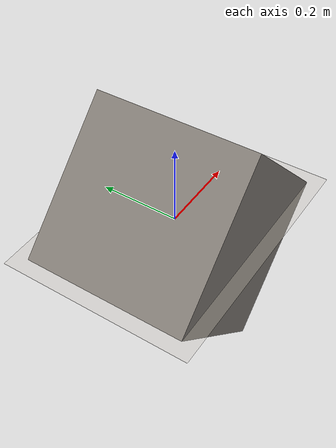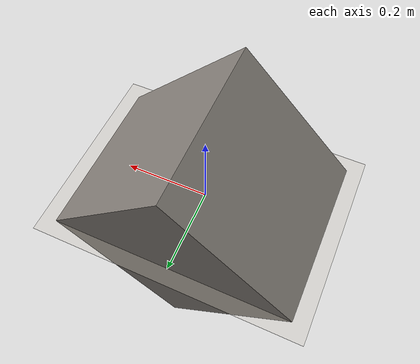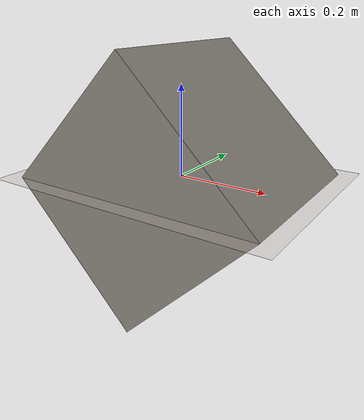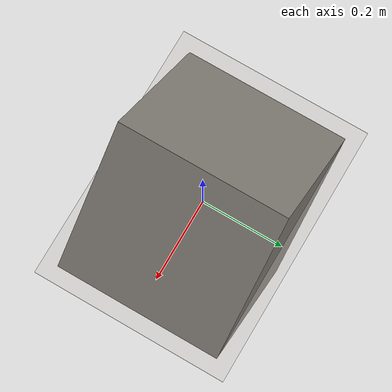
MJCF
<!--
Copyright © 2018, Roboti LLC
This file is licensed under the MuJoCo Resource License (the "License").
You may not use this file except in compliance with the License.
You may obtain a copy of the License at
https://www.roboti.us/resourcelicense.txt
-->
<mujoco>
    <compiler meshdir="mesh/" texturedir="texture/"/>

    <statistic extent="2" meansize=".05"/>

    <option timestep="0.005" solver="Newton" iterations="30" tolerance="1e-10" jacobian="sparse" cone="pyramidal"/>

    <visual>
        <rgba haze="0.15 0.25 0.35 1"/>
        <quality shadowsize="2048"/>
        <map stiffness="700" shadowscale="0.5" fogstart="10" fogend="15" zfar="40" haze="0.3"/>
    </visual>

    <asset>
        <texture type="skybox" builtin="gradient" rgb1="0.3 0.5 0.7" rgb2="0 0 0" width="512" height="512"/>
        <texture name="texobj" type="cube" builtin="checker" rgb1=".2 .3 .4" rgb2=".1 0.15 0.2"
            width="512" height="512" mark="cross" markrgb=".8 .8 .8"/>
        <texture name="texplane" type="2d" file="Oak.png"/>
        <texture name="texmarble" type="cube" file="Marble.png"/>

        <material name="matplane" reflectance="0.3" texture="texplane" texrepeat="1 1" texuniform="true"/>
        <material name="matobj" reflectance="0.3" texture="texobj" texrepeat="1 1" texuniform="true"/>
        <material name="matmarble" texture="texmarble" rgba=".7 .7 .7 1"/>
    </asset>

    <worldbody>
        <light directional="true" diffuse=".4 .4 .4" specular="0.1 0.1 0.1" pos="0 0 5.0" dir="0 0 -1" castshadow="false"/>
        <light directional="true" diffuse=".6 .6 .6" specular="0.2 0.2 0.2" pos="0 0 4" dir="0 0 -1"/>
        <geom name="ground" type="plane" size="0 0 1" pos="0 0 0" material="matplane" condim="3"/>
        <!-- quat = "cos(π/8) sin(π/8) 0 0". This corresponds to a 45 degree
            rotation about vecotor [1, 0, 0] (i.e. x-axis) to create a 45 degree ramp-->
        <geom type="box" size=".2 .2 .2" material="matmarble" quat="0.9238795325112867 0 0.3826834323650898 0" group="1" condim="3" name="ramp45"/>
    </worldbody>

</mujoco>
